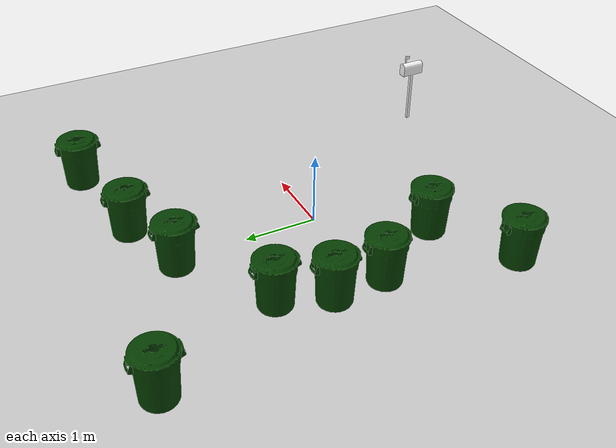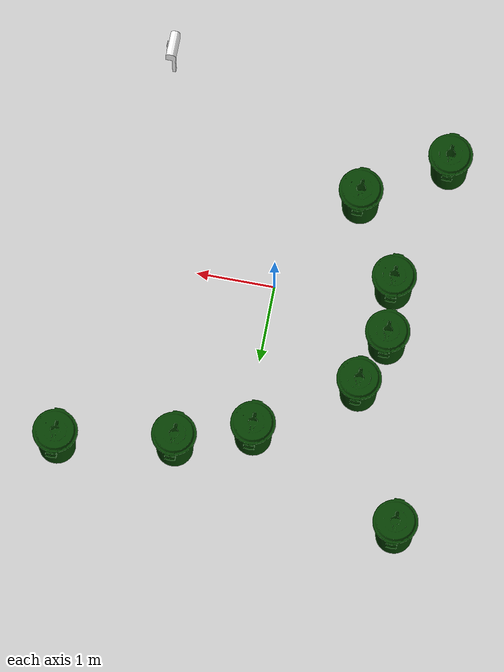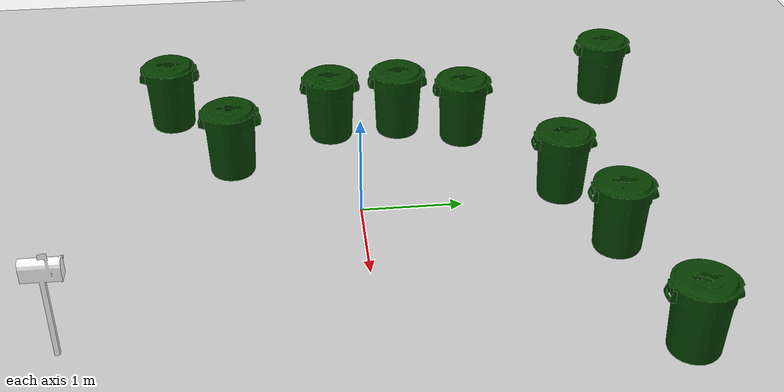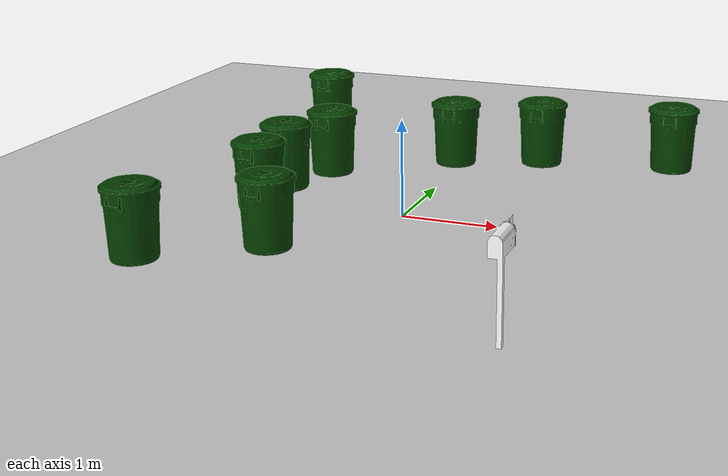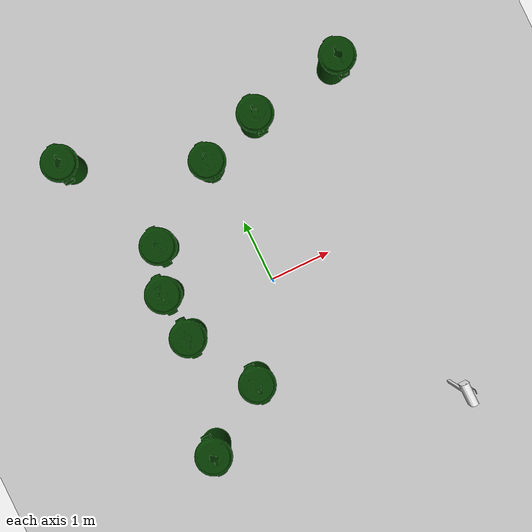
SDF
<sdf version="1.7">
 <world name="default">
  <light name="sun" type="directional">
   <pose>0 0 10 0 -0 0</pose>
   <diffuse>0.8 0.8 0.8 1</diffuse>
   <specular>0.2 0.2 0.2 1</specular>
   <attenuation>
    <range>1000</range>
    <constant>0.9</constant>
    <linear>0.01</linear>
    <quadratic>0.001</quadratic>
   </attenuation>
   <direction>-0.5 0.1 -0.9</direction>
   <spot><inner_angle>0</inner_angle><outer_angle>0</outer_angle><falloff>0</falloff></spot>
  </light>
  <model name="ground_plane">
   <static>1</static>
   <link name="link">
    <collision name="collision">
     <geometry><plane><normal>0 0 1</normal><size>100 100</size></plane></geometry>
     <surface><friction><ode><mu>100</mu><mu2>50</mu2></ode></friction></surface>
    </collision>
    <visual name="visual">
     <cast_shadows>0</cast_shadows>
     <geometry><plane><normal>0 0 1</normal><size>100 100</size></plane></geometry>
     <material>
      <script><uri>file://media/materials/scripts/gazebo.material</uri><name>Gazebo/Grey</name></script>
     </material>
    </visual>
   </link>
  </model>
  <gravity>0 0 -9.8</gravity>
  <magnetic_field>6e-06 2.3e-05 -4.2e-05</magnetic_field>
  <atmosphere type="adiabatic"/>
  <physics type="ode">
   <max_step_size>0.001</max_step_size>
   <real_time_factor>1</real_time_factor>
   <real_time_update_rate>1000</real_time_update_rate>
  </physics>
  <scene><ambient>0.4 0.4 0.4 1</ambient><background>0.7 0.7 0.7 1</background><shadows>1</shadows></scene>
  <audio><device>default</device></audio>
  <spherical_coordinates>
   <surface_model>EARTH_WGS84</surface_model>
   <latitude_deg>0</latitude_deg>
   <longitude_deg>0</longitude_deg>
   <elevation>0</elevation>
   <heading_deg>0</heading_deg>
  </spherical_coordinates>
  <model name="Mailbox">
   <link name="link">
    <collision name="collision">
     <geometry><mesh><uri>model://mailbox/meshes/mailbox.dae</uri></mesh></geometry>
    </collision>
    <visual name="visual">
     <geometry><mesh><uri>model://mailbox/meshes/mailbox.dae</uri></mesh></geometry>
     <material>
      <script>
       <uri>model://mailbox/materials/scripts</uri>
       <uri>model://mailbox/materials/textures</uri>
       <name>Mailbox/Diffuse</name>
      </script>
     </material>
    </visual>
    <inertial>
     <inertia><ixx>1</ixx><ixy>0</ixy><ixz>0</ixz><iyy>1</iyy><iyz>0</iyz><izz>1</izz></inertia>
     <mass>1</mass>
    </inertial>
   </link>
   <pose>1.81491 -2.65676 -9e-06 -9e-06 1e-06 0</pose>
  </model>
  <model name="first_2015_trash_can">
   <link name="link">
    <inertial>
     <pose>0 0 0.3683 0 -0 0</pose>
     <mass>4.83076</mass>
     <inertia>
      <ixx>0.281534</ixx>
      <ixy>0</ixy>
      <ixz>0</ixz>
      <iyy>0.281534</iyy>
      <iyz>0</iyz>
      <izz>0.126223</izz>
     </inertia>
    </inertial>
    <visual name="visual">
     <geometry><mesh><uri>model://first_2015_trash_can/meshes/trash_can.dae</uri></mesh></geometry>
    </visual>
    <collision name="collision">
     <geometry><mesh><uri>model://first_2015_trash_can/meshes/trash_can.dae</uri></mesh></geometry>
    </collision>
   </link>
   <pose>-1.89959 -1.92617 1e-06 0 -5e-06 -0.000972</pose>
  </model>
  <model name="first_2015_trash_can_0">
   <link name="link">
    <inertial>
     <pose>0 0 0.3683 0 -0 0</pose>
     <mass>4.83076</mass>
     <inertia>
      <ixx>0.281534</ixx>
      <ixy>0</ixy>
      <ixz>0</ixz>
      <iyy>0.281534</iyy>
      <iyz>0</iyz>
      <izz>0.126223</izz>
     </inertia>
    </inertial>
    <visual name="visual">
     <geometry><mesh><uri>model://first_2015_trash_can/meshes/trash_can.dae</uri></mesh></geometry>
    </visual>
    <collision name="collision">
     <geometry><mesh><uri>model://first_2015_trash_can/meshes/trash_can.dae</uri></mesh></geometry>
    </collision>
   </link>
   <pose>-2.0635 2.92015 -2e-06 1.6e-05 5e-06 -0.000708</pose>
  </model>
  <model name="first_2015_trash_can_1">
   <link name="link">
    <inertial>
     <pose>0 0 0.3683 0 -0 0</pose>
     <mass>4.83076</mass>
     <inertia>
      <ixx>0.281534</ixx>
      <ixy>0</ixy>
      <ixz>0</ixz>
      <iyy>0.281534</iyy>
      <iyz>0</iyz>
      <izz>0.126223</izz>
     </inertia>
    </inertial>
    <visual name="visual">
     <geometry><mesh><uri>model://first_2015_trash_can/meshes/trash_can.dae</uri></mesh></geometry>
    </visual>
    <collision name="collision">
     <geometry><mesh><uri>model://first_2015_trash_can/meshes/trash_can.dae</uri></mesh></geometry>
    </collision>
   </link>
   <pose>2.281 2.56736 -1e-06 1e-05 1.6e-05 -0.000838</pose>
  </model>
  <model name="first_2015_trash_can_2">
   <link name="link">
    <inertial>
     <pose>0 0 0.3683 0 -0 0</pose>
     <mass>4.83076</mass>
     <inertia>
      <ixx>0.281534</ixx>
      <ixy>0</ixy>
      <ixz>0</ixz>
      <iyy>0.281534</iyy>
      <iyz>0</iyz>
      <izz>0.126223</izz>
     </inertia>
    </inertial>
    <visual name="visual">
     <geometry><mesh><uri>model://first_2015_trash_can/meshes/trash_can.dae</uri></mesh></geometry>
    </visual>
    <collision name="collision">
     <geometry><mesh><uri>model://first_2015_trash_can/meshes/trash_can.dae</uri></mesh></geometry>
    </collision>
   </link>
   <pose>-1.29369 1.1943 -3e-06 -0 1.5e-05 -0.000694</pose>
  </model>
  <model name="first_2015_trash_can_3">
   <link name="link">
    <inertial>
     <pose>0 0 0.3683 0 -0 0</pose>
     <mass>4.83076</mass>
     <inertia>
      <ixx>0.281534</ixx>
      <ixy>0</ixy>
      <ixz>0</ixz>
      <iyy>0.281534</iyy>
      <iyz>0</iyz>
      <izz>0.126223</izz>
     </inertia>
    </inertial>
    <visual name="visual">
     <geometry><mesh><uri>model://first_2015_trash_can/meshes/trash_can.dae</uri></mesh></geometry>
    </visual>
    <collision name="collision">
     <geometry><mesh><uri>model://first_2015_trash_can/meshes/trash_can.dae</uri></mesh></geometry>
    </collision>
   </link>
   <pose>0.828972 2.32754 -5e-06 -1e-06 -0 -0.000638</pose>
  </model>
  <model name="first_2015_trash_can_4">
   <link name="link">
    <inertial>
     <pose>0 0 0.3683 0 -0 0</pose>
     <mass>4.83076</mass>
     <inertia>
      <ixx>0.281534</ixx>
      <ixy>0</ixy>
      <ixz>0</ixz>
      <iyy>0.281534</iyy>
      <iyz>0</iyz>
      <izz>0.126223</izz>
     </inertia>
    </inertial>
    <visual name="visual">
     <geometry><mesh><uri>model://first_2015_trash_can/meshes/trash_can.dae</uri></mesh></geometry>
    </visual>
    <collision name="collision">
     <geometry><mesh><uri>model://first_2015_trash_can/meshes/trash_can.dae</uri></mesh></geometry>
    </collision>
   </link>
   <pose>-0.105764 2.00547 -4e-06 -1e-06 1.8e-05 -0.000544</pose>
  </model>
  <model name="first_2015_trash_can_5">
   <link name="link">
    <inertial>
     <pose>0 0 0.3683 0 -0 0</pose>
     <mass>4.83076</mass>
     <inertia>
      <ixx>0.281534</ixx>
      <ixy>0</ixy>
      <ixz>0</ixz>
      <iyy>0.281534</iyy>
      <iyz>0</iyz>
      <izz>0.126223</izz>
     </inertia>
    </inertial>
    <visual name="visual">
     <geometry><mesh><uri>model://first_2015_trash_can/meshes/trash_can.dae</uri></mesh></geometry>
    </visual>
    <collision name="collision">
     <geometry><mesh><uri>model://first_2015_trash_can/meshes/trash_can.dae</uri></mesh></geometry>
    </collision>
   </link>
   <pose>-1.53355 0.521407 -4e-06 -7e-06 1.9e-05 -0.000286</pose>
  </model>
  <model name="first_2015_trash_can_6">
   <link name="link">
    <inertial>
     <pose>0 0 0.3683 0 -0 0</pose>
     <mass>4.83076</mass>
     <inertia>
      <ixx>0.281534</ixx>
      <ixy>0</ixy>
      <ixz>0</ixz>
      <iyy>0.281534</iyy>
      <iyz>0</iyz>
      <izz>0.126223</izz>
     </inertia>
    </inertial>
    <visual name="visual">
     <geometry><mesh><uri>model://first_2015_trash_can/meshes/trash_can.dae</uri></mesh></geometry>
    </visual>
    <collision name="collision">
     <geometry><mesh><uri>model://first_2015_trash_can/meshes/trash_can.dae</uri></mesh></geometry>
    </collision>
   </link>
   <pose>-1.48525 -0.209175 -5e-06 -1e-06 -0 -0.00035</pose>
  </model>
  <model name="first_2015_trash_can_7">
   <link name="link">
    <inertial>
     <pose>0 0 0.3683 0 -0 0</pose>
     <mass>4.83076</mass>
     <inertia>
      <ixx>0.281534</ixx>
      <ixy>0</ixy>
      <ixz>0</ixz>
      <iyy>0.281534</iyy>
      <iyz>0</iyz>
      <izz>0.126223</izz>
     </inertia>
    </inertial>
    <visual name="visual">
     <geometry><mesh><uri>model://first_2015_trash_can/meshes/trash_can.dae</uri></mesh></geometry>
    </visual>
    <collision name="collision">
     <geometry><mesh><uri>model://first_2015_trash_can/meshes/trash_can.dae</uri></mesh></geometry>
    </collision>
   </link>
   <pose>-0.869731 -1.26029 -2e-06 -6e-06 1.1e-05 -0.000191</pose>
  </model>
 </world>
</sdf>
